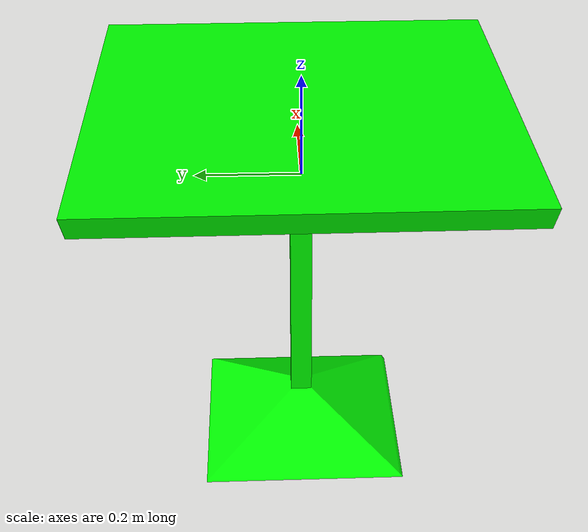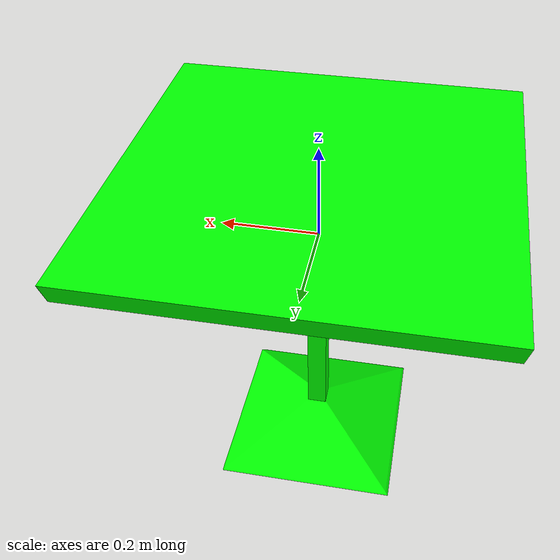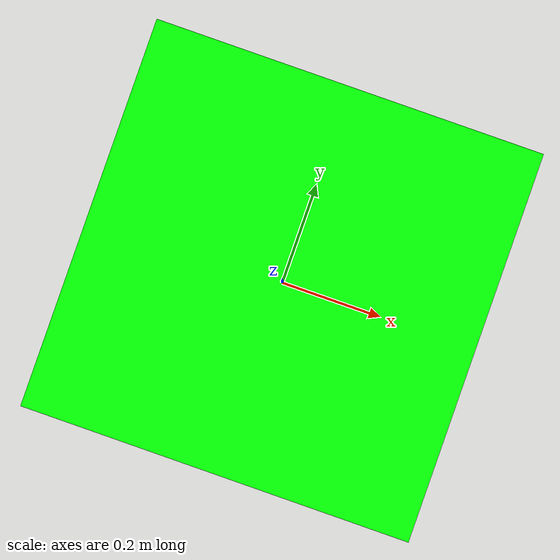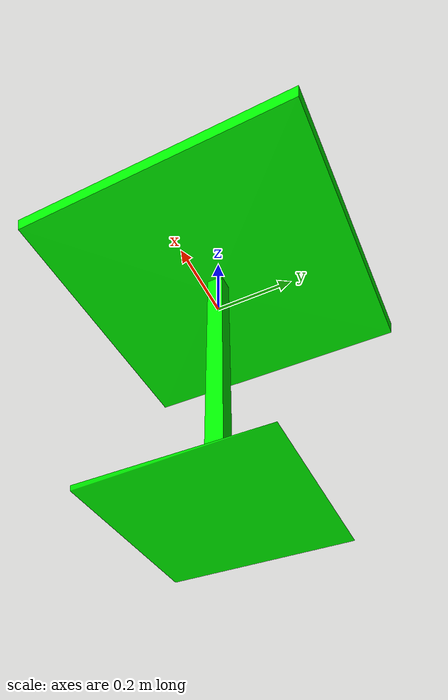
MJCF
<mujoco model="custom_table">
  <worldbody>
    <body name="custom_table">
      <body name="collision">
        <geom pos="0 0 0" mesh="custom_table_0" type="mesh" density="5000" rgba="0 1 0 1" group="1" condim="6"/>
        <geom pos="0 0 0" mesh="custom_table_1" type="mesh" density="5000" rgba="0 1 0 1" group="1" condim="6"/>
        <geom pos="0 0 0" mesh="custom_table_2" type="mesh" density="5000" rgba="0 1 0 1" group="1" condim="6"/>
      </body>
      <body name="visual">
        <geom pos="0 0 0" mesh="custom_table_0" type="mesh" rgba="0 1 0 1" conaffinity="0" contype="0" group="0" mass="0.0001"/>
        <geom pos="0 0 0" mesh="custom_table_1" type="mesh" rgba="0 1 0 1" conaffinity="0" contype="0" group="0" mass="0.0001"/>
        <geom pos="0 0 0" mesh="custom_table_2" type="mesh" rgba="0 1 0 1" conaffinity="0" contype="0" group="0" mass="0.0001"/>
      </body>
      <site rgba="0 0 0 0" size="0.005" pos="0 0 -0.06" name="bottom_site"/>
      <site rgba="0 0 0 0" size="0.005" pos="0 0 0.04" name="top_site"/>
      <site rgba="0 0 0 0" size="0.005" pos="0.025 0.025 0" name="horizontal_radius_site"/>
    </body>
  </worldbody>
  <asset>
    <mesh file="meshes/custom_table_0.stl" name="custom_table_0" scale="0.01 0.01 0.01"/>
    <mesh file="meshes/custom_table_1.stl" name="custom_table_1" scale="0.01 0.01 0.01"/>
    <mesh file="meshes/custom_table_2.stl" name="custom_table_2" scale="0.01 0.01 0.01"/>
  </asset>
</mujoco>
